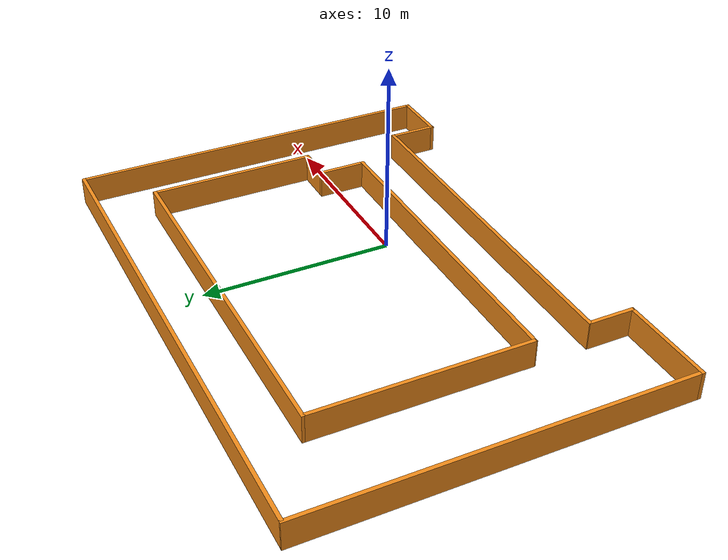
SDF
<?xml version='1.0'?>
<sdf version='1.7'>
  <model name='simple_kb'>
    <link name='link_0'>
      <inertial>
        <mass>1</mass>
        <inertia>
          <ixx>0.166667</ixx>
          <ixy>0</ixy>
          <ixz>0</ixz>
          <iyy>0.166667</iyy>
          <iyz>0</iyz>
          <izz>0.166667</izz>
        </inertia>
        <pose>0 0 0 0 -0 0</pose>
      </inertial>
      <pose>-0.839286 -5.09643 0 0 -0 0</pose>
      <gravity>1</gravity>
      <self_collide>0</self_collide>
      <kinematic>0</kinematic>
      <enable_wind>0</enable_wind>
      <visual name='visual'>
        <pose>0 0 0 0 -0 0</pose>
        <geometry>
          <box>
            <size>20 0.2 1.5</size>
          </box>
        </geometry>
        <material>
          <lighting>1</lighting>
          <script>
            <uri>file://media/materials/scripts/gazebo.material</uri>
            <name>Gazebo/Orange</name>
          </script>
          <shader type='pixel'>
            <normal_map>__default__</normal_map>
          </shader>
          <ambient>0.3 0.3 0.3 1</ambient>
          <diffuse>0.7 0.7 0.7 1</diffuse>
          <specular>0.01 0.01 0.01 1</specular>
          <emissive>0 0 0 1</emissive>
        </material>
        <transparency>0</transparency>
        <cast_shadows>1</cast_shadows>
      </visual>
      <collision name='collision'>
        <laser_retro>0</laser_retro>
        <max_contacts>10</max_contacts>
        <pose>0 0 0 0 -0 0</pose>
        <geometry>
          <box>
            <size>20 0.2 1.5</size>
          </box>
        </geometry>
        <surface>
          <friction>
            <ode>
              <mu>1</mu>
              <mu2>1</mu2>
              <fdir1>0 0 0</fdir1>
              <slip1>0</slip1>
              <slip2>0</slip2>
            </ode>
            <torsional>
              <coefficient>1</coefficient>
              <patch_radius>0</patch_radius>
              <surface_radius>0</surface_radius>
              <use_patch_radius>1</use_patch_radius>
              <ode>
                <slip>0</slip>
              </ode>
            </torsional>
          </friction>
          <bounce>
            <restitution_coefficient>0</restitution_coefficient>
            <threshold>1e+06</threshold>
          </bounce>
          <contact>
            <collide_without_contact>0</collide_without_contact>
            <collide_without_contact_bitmask>1</collide_without_contact_bitmask>
            <collide_bitmask>1</collide_bitmask>
            <ode>
              <soft_cfm>0</soft_cfm>
              <soft_erp>0.2</soft_erp>
              <kp>1e+13</kp>
              <kd>1</kd>
              <max_vel>0.01</max_vel>
              <min_depth>0</min_depth>
            </ode>
            <bullet>
              <split_impulse>1</split_impulse>
              <split_impulse_penetration_threshold>-0.01</split_impulse_penetration_threshold>
              <soft_cfm>0</soft_cfm>
              <soft_erp>0.2</soft_erp>
              <kp>1e+13</kp>
              <kd>1</kd>
            </bullet>
          </contact>
        </surface>
      </collision>
    </link>
    <link name='link_0_clone'>
      <inertial>
        <mass>1</mass>
        <inertia>
          <ixx>0.166667</ixx>
          <ixy>0</ixy>
          <ixz>0</ixz>
          <iyy>0.166667</iyy>
          <iyz>0</iyz>
          <izz>0.166667</izz>
        </inertia>
        <pose>0 0 0 0 -0 0</pose>
      </inertial>
      <pose>-1.83929 -2.09643 0 0 -0 0</pose>
      <gravity>1</gravity>
      <self_collide>0</self_collide>
      <kinematic>0</kinematic>
      <enable_wind>0</enable_wind>
      <visual name='visual'>
        <pose>0 0 0 0 -0 0</pose>
        <geometry>
          <box>
            <size>18 0.2 1.5</size>
          </box>
        </geometry>
        <material>
          <lighting>1</lighting>
          <script>
            <uri>file://media/materials/scripts/gazebo.material</uri>
            <name>Gazebo/Orange</name>
          </script>
          <shader type='pixel'>
            <normal_map>__default__</normal_map>
          </shader>
          <ambient>0.3 0.3 0.3 1</ambient>
          <diffuse>0.7 0.7 0.7 1</diffuse>
          <specular>0.01 0.01 0.01 1</specular>
          <emissive>0 0 0 1</emissive>
        </material>
        <transparency>0</transparency>
        <cast_shadows>1</cast_shadows>
      </visual>
      <collision name='collision'>
        <laser_retro>0</laser_retro>
        <max_contacts>10</max_contacts>
        <pose>0 0 0 0 -0 0</pose>
        <geometry>
          <box>
            <size>18 0.2 1.5</size>
          </box>
        </geometry>
        <surface>
          <friction>
            <ode>
              <mu>1</mu>
              <mu2>1</mu2>
              <fdir1>0 0 0</fdir1>
              <slip1>0</slip1>
              <slip2>0</slip2>
            </ode>
            <torsional>
              <coefficient>1</coefficient>
              <patch_radius>0</patch_radius>
              <surface_radius>0</surface_radius>
              <use_patch_radius>1</use_patch_radius>
              <ode>
                <slip>0</slip>
              </ode>
            </torsional>
          </friction>
          <bounce>
            <restitution_coefficient>0</restitution_coefficient>
            <threshold>1e+06</threshold>
          </bounce>
          <contact>
            <collide_without_contact>0</collide_without_contact>
            <collide_without_contact_bitmask>1</collide_without_contact_bitmask>
            <collide_bitmask>1</collide_bitmask>
            <ode>
              <soft_cfm>0</soft_cfm>
              <soft_erp>0.2</soft_erp>
              <kp>1e+13</kp>
              <kd>1</kd>
              <max_vel>0.01</max_vel>
              <min_depth>0</min_depth>
            </ode>
            <bullet>
              <split_impulse>1</split_impulse>
              <split_impulse_penetration_threshold>-0.01</split_impulse_penetration_threshold>
              <soft_cfm>0</soft_cfm>
              <soft_erp>0.2</soft_erp>
              <kp>1e+13</kp>
              <kd>1</kd>
            </bullet>
          </contact>
        </surface>
      </collision>
    </link>
    <link name='link_0_clone_0'>
      <inertial>
        <mass>1</mass>
        <inertia>
          <ixx>0.166667</ixx>
          <ixy>0</ixy>
          <ixz>0</ixz>
          <iyy>0.166667</iyy>
          <iyz>0</iyz>
          <izz>0.166667</izz>
        </inertia>
        <pose>0 0 0 0 -0 0</pose>
      </inertial>
      <pose>-1.83929 12.5036 0 0 -0 0</pose>
      <gravity>1</gravity>
      <self_collide>0</self_collide>
      <kinematic>0</kinematic>
      <enable_wind>0</enable_wind>
      <visual name='visual'>
        <pose>0 0 0 0 -0 0</pose>
        <geometry>
          <box>
            <size>28 0.2 1.5</size>
          </box>
        </geometry>
        <material>
          <lighting>1</lighting>
          <script>
            <uri>file://media/materials/scripts/gazebo.material</uri>
            <name>Gazebo/Orange</name>
          </script>
          <shader type='pixel'>
            <normal_map>__default__</normal_map>
          </shader>
          <ambient>0.3 0.3 0.3 1</ambient>
          <diffuse>0.7 0.7 0.7 1</diffuse>
          <specular>0.01 0.01 0.01 1</specular>
          <emissive>0 0 0 1</emissive>
        </material>
        <transparency>0</transparency>
        <cast_shadows>1</cast_shadows>
      </visual>
      <collision name='collision'>
        <laser_retro>0</laser_retro>
        <max_contacts>10</max_contacts>
        <pose>0 0 0 0 -0 0</pose>
        <geometry>
          <box>
            <size>28 0.2 1.5</size>
          </box>
        </geometry>
        <surface>
          <friction>
            <ode>
              <mu>1</mu>
              <mu2>1</mu2>
              <fdir1>0 0 0</fdir1>
              <slip1>0</slip1>
              <slip2>0</slip2>
            </ode>
            <torsional>
              <coefficient>1</coefficient>
              <patch_radius>0</patch_radius>
              <surface_radius>0</surface_radius>
              <use_patch_radius>1</use_patch_radius>
              <ode>
                <slip>0</slip>
              </ode>
            </torsional>
          </friction>
          <bounce>
            <restitution_coefficient>0</restitution_coefficient>
            <threshold>1e+06</threshold>
          </bounce>
          <contact>
            <collide_without_contact>0</collide_without_contact>
            <collide_without_contact_bitmask>1</collide_without_contact_bitmask>
            <collide_bitmask>1</collide_bitmask>
            <ode>
              <soft_cfm>0</soft_cfm>
              <soft_erp>0.2</soft_erp>
              <kp>1e+13</kp>
              <kd>1</kd>
              <max_vel>0.01</max_vel>
              <min_depth>0</min_depth>
            </ode>
            <bullet>
              <split_impulse>1</split_impulse>
              <split_impulse_penetration_threshold>-0.01</split_impulse_penetration_threshold>
              <soft_cfm>0</soft_cfm>
              <soft_erp>0.2</soft_erp>
              <kp>1e+13</kp>
              <kd>1</kd>
            </bullet>
          </contact>
        </surface>
      </collision>
    </link>
    <link name='link_0_clone_1'>
      <inertial>
        <mass>1</mass>
        <inertia>
          <ixx>0.166667</ixx>
          <ixy>0</ixy>
          <ixz>0</ixz>
          <iyy>0.166667</iyy>
          <iyz>0</iyz>
          <izz>0.166667</izz>
        </inertia>
        <pose>0 0 0 0 -0 0</pose>
      </inertial>
      <pose>-0.839286 9.40357 0 0 -0 0</pose>
      <gravity>1</gravity>
      <self_collide>0</self_collide>
      <kinematic>0</kinematic>
      <enable_wind>0</enable_wind>
      <visual name='visual'>
        <pose>0 0 0 0 -0 0</pose>
        <geometry>
          <box>
            <size>20 0.2 1.5</size>
          </box>
        </geometry>
        <material>
          <lighting>1</lighting>
          <script>
            <uri>file://media/materials/scripts/gazebo.material</uri>
            <name>Gazebo/Orange</name>
          </script>
          <shader type='pixel'>
            <normal_map>__default__</normal_map>
          </shader>
          <ambient>0.3 0.3 0.3 1</ambient>
          <diffuse>0.7 0.7 0.7 1</diffuse>
          <specular>0.01 0.01 0.01 1</specular>
          <emissive>0 0 0 1</emissive>
        </material>
        <transparency>0</transparency>
        <cast_shadows>1</cast_shadows>
      </visual>
      <collision name='collision'>
        <laser_retro>0</laser_retro>
        <max_contacts>10</max_contacts>
        <pose>0 0 0 0 -0 0</pose>
        <geometry>
          <box>
            <size>20 0.2 1.5</size>
          </box>
        </geometry>
        <surface>
          <friction>
            <ode>
              <mu>1</mu>
              <mu2>1</mu2>
              <fdir1>0 0 0</fdir1>
              <slip1>0</slip1>
              <slip2>0</slip2>
            </ode>
            <torsional>
              <coefficient>1</coefficient>
              <patch_radius>0</patch_radius>
              <surface_radius>0</surface_radius>
              <use_patch_radius>1</use_patch_radius>
              <ode>
                <slip>0</slip>
              </ode>
            </torsional>
          </friction>
          <bounce>
            <restitution_coefficient>0</restitution_coefficient>
            <threshold>1e+06</threshold>
          </bounce>
          <contact>
            <collide_without_contact>0</collide_without_contact>
            <collide_without_contact_bitmask>1</collide_without_contact_bitmask>
            <collide_bitmask>1</collide_bitmask>
            <ode>
              <soft_cfm>0</soft_cfm>
              <soft_erp>0.2</soft_erp>
              <kp>1e+13</kp>
              <kd>1</kd>
              <max_vel>0.01</max_vel>
              <min_depth>0</min_depth>
            </ode>
            <bullet>
              <split_impulse>1</split_impulse>
              <split_impulse_penetration_threshold>-0.01</split_impulse_penetration_threshold>
              <soft_cfm>0</soft_cfm>
              <soft_erp>0.2</soft_erp>
              <kp>1e+13</kp>
              <kd>1</kd>
            </bullet>
          </contact>
        </surface>
      </collision>
    </link>
    <link name='link_1'>
      <inertial>
        <mass>1</mass>
        <inertia>
          <ixx>0.166667</ixx>
          <ixy>0</ixy>
          <ixz>0</ixz>
          <iyy>0.166667</iyy>
          <iyz>0</iyz>
          <izz>0.166667</izz>
        </inertia>
        <pose>0 0 0 0 -0 0</pose>
      </inertial>
      <pose>12.0607 2.40357 0 0 -0 0</pose>
      <gravity>1</gravity>
      <self_collide>0</self_collide>
      <kinematic>0</kinematic>
      <enable_wind>0</enable_wind>
      <visual name='visual'>
        <pose>0 0 0 0 -0 0</pose>
        <geometry>
          <box>
            <size>0.2 20 1.5</size>
          </box>
        </geometry>
        <material>
          <lighting>1</lighting>
          <script>
            <uri>file://media/materials/scripts/gazebo.material</uri>
            <name>Gazebo/Orange</name>
          </script>
          <shader type='pixel'>
            <normal_map>__default__</normal_map>
          </shader>
          <ambient>0.3 0.3 0.3 1</ambient>
          <diffuse>0.7 0.7 0.7 1</diffuse>
          <specular>0.01 0.01 0.01 1</specular>
          <emissive>0 0 0 1</emissive>
        </material>
        <transparency>0</transparency>
        <cast_shadows>1</cast_shadows>
      </visual>
      <collision name='collision'>
        <laser_retro>0</laser_retro>
        <max_contacts>10</max_contacts>
        <pose>0 0 0 0 -0 0</pose>
        <geometry>
          <box>
            <size>0.2 20 1.5</size>
          </box>
        </geometry>
        <surface>
          <friction>
            <ode>
              <mu>1</mu>
              <mu2>1</mu2>
              <fdir1>0 0 0</fdir1>
              <slip1>0</slip1>
              <slip2>0</slip2>
            </ode>
            <torsional>
              <coefficient>1</coefficient>
              <patch_radius>0</patch_radius>
              <surface_radius>0</surface_radius>
              <use_patch_radius>1</use_patch_radius>
              <ode>
                <slip>0</slip>
              </ode>
            </torsional>
          </friction>
          <bounce>
            <restitution_coefficient>0</restitution_coefficient>
            <threshold>1e+06</threshold>
          </bounce>
          <contact>
            <collide_without_contact>0</collide_without_contact>
            <collide_without_contact_bitmask>1</collide_without_contact_bitmask>
            <collide_bitmask>1</collide_bitmask>
            <ode>
              <soft_cfm>0</soft_cfm>
              <soft_erp>0.2</soft_erp>
              <kp>1e+13</kp>
              <kd>1</kd>
              <max_vel>0.01</max_vel>
              <min_depth>0</min_depth>
            </ode>
            <bullet>
              <split_impulse>1</split_impulse>
              <split_impulse_penetration_threshold>-0.01</split_impulse_penetration_threshold>
              <soft_cfm>0</soft_cfm>
              <soft_erp>0.2</soft_erp>
              <kp>1e+13</kp>
              <kd>1</kd>
            </bullet>
          </contact>
        </surface>
      </collision>
    </link>
    <link name='link_1_clone'>
      <inertial>
        <mass>1</mass>
        <inertia>
          <ixx>0.166667</ixx>
          <ixy>0</ixy>
          <ixz>0</ixz>
          <iyy>0.166667</iyy>
          <iyz>0</iyz>
          <izz>0.166667</izz>
        </inertia>
        <pose>0 0 0 0 -0 0</pose>
      </inertial>
      <pose>9.06071 4.80357 0 0 -0 0</pose>
      <gravity>1</gravity>
      <self_collide>0</self_collide>
      <kinematic>0</kinematic>
      <enable_wind>0</enable_wind>
      <visual name='visual'>
        <pose>0 0 0 0 -0 0</pose>
        <geometry>
          <box>
            <size>0.2 9 1.5</size>
          </box>
        </geometry>
        <material>
          <lighting>1</lighting>
          <script>
            <uri>file://media/materials/scripts/gazebo.material</uri>
            <name>Gazebo/Orange</name>
          </script>
          <shader type='pixel'>
            <normal_map>__default__</normal_map>
          </shader>
          <ambient>0.3 0.3 0.3 1</ambient>
          <diffuse>0.7 0.7 0.7 1</diffuse>
          <specular>0.01 0.01 0.01 1</specular>
          <emissive>0 0 0 1</emissive>
        </material>
        <transparency>0</transparency>
        <cast_shadows>1</cast_shadows>
      </visual>
      <collision name='collision'>
        <laser_retro>0</laser_retro>
        <max_contacts>10</max_contacts>
        <pose>0 0 0 0 -0 0</pose>
        <geometry>
          <box>
            <size>0.2 9 1.5</size>
          </box>
        </geometry>
        <surface>
          <friction>
            <ode>
              <mu>1</mu>
              <mu2>1</mu2>
              <fdir1>0 0 0</fdir1>
              <slip1>0</slip1>
              <slip2>0</slip2>
            </ode>
            <torsional>
              <coefficient>1</coefficient>
              <patch_radius>0</patch_radius>
              <surface_radius>0</surface_radius>
              <use_patch_radius>1</use_patch_radius>
              <ode>
                <slip>0</slip>
              </ode>
            </torsional>
          </friction>
          <bounce>
            <restitution_coefficient>0</restitution_coefficient>
            <threshold>1e+06</threshold>
          </bounce>
          <contact>
            <collide_without_contact>0</collide_without_contact>
            <collide_without_contact_bitmask>1</collide_without_contact_bitmask>
            <collide_bitmask>1</collide_bitmask>
            <ode>
              <soft_cfm>0</soft_cfm>
              <soft_erp>0.2</soft_erp>
              <kp>1e+13</kp>
              <kd>1</kd>
              <max_vel>0.01</max_vel>
              <min_depth>0</min_depth>
            </ode>
            <bullet>
              <split_impulse>1</split_impulse>
              <split_impulse_penetration_threshold>-0.01</split_impulse_penetration_threshold>
              <soft_cfm>0</soft_cfm>
              <soft_erp>0.2</soft_erp>
              <kp>1e+13</kp>
              <kd>1</kd>
            </bullet>
          </contact>
        </surface>
      </collision>
    </link>
    <link name='link_1_clone_0'>
      <inertial>
        <mass>1</mass>
        <inertia>
          <ixx>0.166667</ixx>
          <ixy>0</ixy>
          <ixz>0</ixz>
          <iyy>0.166667</iyy>
          <iyz>0</iyz>
          <izz>0.166667</izz>
        </inertia>
        <pose>0 0 0 0 -0 0</pose>
      </inertial>
      <pose>-15.8393 2.60357 0 0 -0 0</pose>
      <gravity>1</gravity>
      <self_collide>0</self_collide>
      <kinematic>0</kinematic>
      <enable_wind>0</enable_wind>
      <visual name='visual'>
        <pose>0 0 0 0 -0 0</pose>
        <geometry>
          <box>
            <size>0.2 20 1.5</size>
          </box>
        </geometry>
        <material>
          <lighting>1</lighting>
          <script>
            <uri>file://media/materials/scripts/gazebo.material</uri>
            <name>Gazebo/Orange</name>
          </script>
          <shader type='pixel'>
            <normal_map>__default__</normal_map>
          </shader>
          <ambient>0.3 0.3 0.3 1</ambient>
          <diffuse>0.7 0.7 0.7 1</diffuse>
          <specular>0.01 0.01 0.01 1</specular>
          <emissive>0 0 0 1</emissive>
        </material>
        <transparency>0</transparency>
        <cast_shadows>1</cast_shadows>
      </visual>
      <collision name='collision'>
        <laser_retro>0</laser_retro>
        <max_contacts>10</max_contacts>
        <pose>0 0 0 0 -0 0</pose>
        <geometry>
          <box>
            <size>0.2 20 1.5</size>
          </box>
        </geometry>
        <surface>
          <friction>
            <ode>
              <mu>1</mu>
              <mu2>1</mu2>
              <fdir1>0 0 0</fdir1>
              <slip1>0</slip1>
              <slip2>0</slip2>
            </ode>
            <torsional>
              <coefficient>1</coefficient>
              <patch_radius>0</patch_radius>
              <surface_radius>0</surface_radius>
              <use_patch_radius>1</use_patch_radius>
              <ode>
                <slip>0</slip>
              </ode>
            </torsional>
          </friction>
          <bounce>
            <restitution_coefficient>0</restitution_coefficient>
            <threshold>1e+06</threshold>
          </bounce>
          <contact>
            <collide_without_contact>0</collide_without_contact>
            <collide_without_contact_bitmask>1</collide_without_contact_bitmask>
            <collide_bitmask>1</collide_bitmask>
            <ode>
              <soft_cfm>0</soft_cfm>
              <soft_erp>0.2</soft_erp>
              <kp>1e+13</kp>
              <kd>1</kd>
              <max_vel>0.01</max_vel>
              <min_depth>0</min_depth>
            </ode>
            <bullet>
              <split_impulse>1</split_impulse>
              <split_impulse_penetration_threshold>-0.01</split_impulse_penetration_threshold>
              <soft_cfm>0</soft_cfm>
              <soft_erp>0.2</soft_erp>
              <kp>1e+13</kp>
              <kd>1</kd>
            </bullet>
          </contact>
        </surface>
      </collision>
    </link>
    <link name='link_1_clone_clone'>
      <inertial>
        <mass>1</mass>
        <inertia>
          <ixx>0.166667</ixx>
          <ixy>0</ixy>
          <ixz>0</ixz>
          <iyy>0.166667</iyy>
          <iyz>0</iyz>
          <izz>0.166667</izz>
        </inertia>
        <pose>0 0 0 0 -0 0</pose>
      </inertial>
      <pose>-10.7393 3.60357 0 0 -0 0</pose>
      <gravity>1</gravity>
      <self_collide>0</self_collide>
      <kinematic>0</kinematic>
      <enable_wind>0</enable_wind>
      <visual name='visual'>
        <pose>0 0 0 0 -0 0</pose>
        <geometry>
          <box>
            <size>0.2 11.5 1.5</size>
          </box>
        </geometry>
        <material>
          <lighting>1</lighting>
          <script>
            <uri>file://media/materials/scripts/gazebo.material</uri>
            <name>Gazebo/Orange</name>
          </script>
          <shader type='pixel'>
            <normal_map>__default__</normal_map>
          </shader>
          <ambient>0.3 0.3 0.3 1</ambient>
          <diffuse>0.7 0.7 0.7 1</diffuse>
          <specular>0.01 0.01 0.01 1</specular>
          <emissive>0 0 0 1</emissive>
        </material>
        <transparency>0</transparency>
        <cast_shadows>1</cast_shadows>
      </visual>
      <collision name='collision'>
        <laser_retro>0</laser_retro>
        <max_contacts>10</max_contacts>
        <pose>0 0 0 0 -0 0</pose>
        <geometry>
          <box>
            <size>0.2 11.5 1.5</size>
          </box>
        </geometry>
        <surface>
          <friction>
            <ode>
              <mu>1</mu>
              <mu2>1</mu2>
              <fdir1>0 0 0</fdir1>
              <slip1>0</slip1>
              <slip2>0</slip2>
            </ode>
            <torsional>
              <coefficient>1</coefficient>
              <patch_radius>0</patch_radius>
              <surface_radius>0</surface_radius>
              <use_patch_radius>1</use_patch_radius>
              <ode>
                <slip>0</slip>
              </ode>
            </torsional>
          </friction>
          <bounce>
            <restitution_coefficient>0</restitution_coefficient>
            <threshold>1e+06</threshold>
          </bounce>
          <contact>
            <collide_without_contact>0</collide_without_contact>
            <collide_without_contact_bitmask>1</collide_without_contact_bitmask>
            <collide_bitmask>1</collide_bitmask>
            <ode>
              <soft_cfm>0</soft_cfm>
              <soft_erp>0.2</soft_erp>
              <kp>1e+13</kp>
              <kd>1</kd>
              <max_vel>0.01</max_vel>
              <min_depth>0</min_depth>
            </ode>
            <bullet>
              <split_impulse>1</split_impulse>
              <split_impulse_penetration_threshold>-0.01</split_impulse_penetration_threshold>
              <soft_cfm>0</soft_cfm>
              <soft_erp>0.2</soft_erp>
              <kp>1e+13</kp>
              <kd>1</kd>
            </bullet>
          </contact>
        </surface>
      </collision>
    </link>
    <link name='link_2'>
      <inertial>
        <mass>1</mass>
        <inertia>
          <ixx>0.166667</ixx>
          <ixy>0</ixy>
          <ixz>0</ixz>
          <iyy>0.166667</iyy>
          <iyz>0</iyz>
          <izz>0.166667</izz>
        </inertia>
        <pose>0 0 0 0 -0 0</pose>
      </inertial>
      <pose>9.06071 -6.39643 0 0 -0 0</pose>
      <gravity>1</gravity>
      <self_collide>0</self_collide>
      <kinematic>0</kinematic>
      <enable_wind>0</enable_wind>
      <visual name='visual'>
        <pose>0 0 0 0 -0 0</pose>
        <geometry>
          <box>
            <size>0.2 2.5 1.5</size>
          </box>
        </geometry>
        <material>
          <lighting>1</lighting>
          <script>
            <uri>file://media/materials/scripts/gazebo.material</uri>
            <name>Gazebo/Orange</name>
          </script>
          <shader type='pixel'>
            <normal_map>__default__</normal_map>
          </shader>
          <ambient>0.3 0.3 0.3 1</ambient>
          <diffuse>0.7 0.7 0.7 1</diffuse>
          <specular>0.01 0.01 0.01 1</specular>
          <emissive>0 0 0 1</emissive>
        </material>
        <transparency>0</transparency>
        <cast_shadows>1</cast_shadows>
      </visual>
      <collision name='collision'>
        <laser_retro>0</laser_retro>
        <max_contacts>10</max_contacts>
        <pose>0 0 0 0 -0 0</pose>
        <geometry>
          <box>
            <size>0.2 2.5 1.5</size>
          </box>
        </geometry>
        <surface>
          <friction>
            <ode>
              <mu>1</mu>
              <mu2>1</mu2>
              <fdir1>0 0 0</fdir1>
              <slip1>0</slip1>
              <slip2>0</slip2>
            </ode>
            <torsional>
              <coefficient>1</coefficient>
              <patch_radius>0</patch_radius>
              <surface_radius>0</surface_radius>
              <use_patch_radius>1</use_patch_radius>
              <ode>
                <slip>0</slip>
              </ode>
            </torsional>
          </friction>
          <bounce>
            <restitution_coefficient>0</restitution_coefficient>
            <threshold>1e+06</threshold>
          </bounce>
          <contact>
            <collide_without_contact>0</collide_without_contact>
            <collide_without_contact_bitmask>1</collide_without_contact_bitmask>
            <collide_bitmask>1</collide_bitmask>
            <ode>
              <soft_cfm>0</soft_cfm>
              <soft_erp>0.2</soft_erp>
              <kp>1e+13</kp>
              <kd>1</kd>
              <max_vel>0.01</max_vel>
              <min_depth>0</min_depth>
            </ode>
            <bullet>
              <split_impulse>1</split_impulse>
              <split_impulse_penetration_threshold>-0.01</split_impulse_penetration_threshold>
              <soft_cfm>0</soft_cfm>
              <soft_erp>0.2</soft_erp>
              <kp>1e+13</kp>
              <kd>1</kd>
            </bullet>
          </contact>
        </surface>
      </collision>
    </link>
    <link name='link_2_clone'>
      <inertial>
        <mass>1</mass>
        <inertia>
          <ixx>0.166667</ixx>
          <ixy>0</ixy>
          <ixz>0</ixz>
          <iyy>0.166667</iyy>
          <iyz>0</iyz>
          <izz>0.166667</izz>
        </inertia>
        <pose>0 0 0 0 -0 0</pose>
      </inertial>
      <pose>-10.7393 -6.29643 0 0 -0 0</pose>
      <gravity>1</gravity>
      <self_collide>0</self_collide>
      <kinematic>0</kinematic>
      <enable_wind>0</enable_wind>
      <visual name='visual'>
        <pose>0 0 0 0 -0 0</pose>
        <geometry>
          <box>
            <size>0.2 2.5 1.5</size>
          </box>
        </geometry>
        <material>
          <lighting>1</lighting>
          <script>
            <uri>file://media/materials/scripts/gazebo.material</uri>
            <name>Gazebo/Orange</name>
          </script>
          <shader type='pixel'>
            <normal_map>__default__</normal_map>
          </shader>
          <ambient>0.3 0.3 0.3 1</ambient>
          <diffuse>0.7 0.7 0.7 1</diffuse>
          <specular>0.01 0.01 0.01 1</specular>
          <emissive>0 0 0 1</emissive>
        </material>
        <transparency>0</transparency>
        <cast_shadows>1</cast_shadows>
      </visual>
      <collision name='collision'>
        <laser_retro>0</laser_retro>
        <max_contacts>10</max_contacts>
        <pose>0 0 0 0 -0 0</pose>
        <geometry>
          <box>
            <size>0.2 2.5 1.5</size>
          </box>
        </geometry>
        <surface>
          <friction>
            <ode>
              <mu>1</mu>
              <mu2>1</mu2>
              <fdir1>0 0 0</fdir1>
              <slip1>0</slip1>
              <slip2>0</slip2>
            </ode>
            <torsional>
              <coefficient>1</coefficient>
              <patch_radius>0</patch_radius>
              <surface_radius>0</surface_radius>
              <use_patch_radius>1</use_patch_radius>
              <ode>
                <slip>0</slip>
              </ode>
            </torsional>
          </friction>
          <bounce>
            <restitution_coefficient>0</restitution_coefficient>
            <threshold>1e+06</threshold>
          </bounce>
          <contact>
            <collide_without_contact>0</collide_without_contact>
            <collide_without_contact_bitmask>1</collide_without_contact_bitmask>
            <collide_bitmask>1</collide_bitmask>
            <ode>
              <soft_cfm>0</soft_cfm>
              <soft_erp>0.2</soft_erp>
              <kp>1e+13</kp>
              <kd>1</kd>
              <max_vel>0.01</max_vel>
              <min_depth>0</min_depth>
            </ode>
            <bullet>
              <split_impulse>1</split_impulse>
              <split_impulse_penetration_threshold>-0.01</split_impulse_penetration_threshold>
              <soft_cfm>0</soft_cfm>
              <soft_erp>0.2</soft_erp>
              <kp>1e+13</kp>
              <kd>1</kd>
            </bullet>
          </contact>
        </surface>
      </collision>
    </link>
    <link name='link_2_clone_0'>
      <inertial>
        <mass>1</mass>
        <inertia>
          <ixx>0.166667</ixx>
          <ixy>0</ixy>
          <ixz>0</ixz>
          <iyy>0.166667</iyy>
          <iyz>0</iyz>
          <izz>0.166667</izz>
        </inertia>
        <pose>0 0 0 0 -0 0</pose>
      </inertial>
      <pose>7.06071 -0.746429 0 0 -0 0</pose>
      <gravity>1</gravity>
      <self_collide>0</self_collide>
      <kinematic>0</kinematic>
      <enable_wind>0</enable_wind>
      <visual name='visual'>
        <pose>0 0 0 0 -0 0</pose>
        <geometry>
          <box>
            <size>0.2 2.5 1.5</size>
          </box>
        </geometry>
        <material>
          <lighting>1</lighting>
          <script>
            <uri>file://media/materials/scripts/gazebo.material</uri>
            <name>Gazebo/Orange</name>
          </script>
          <shader type='pixel'>
            <normal_map>__default__</normal_map>
          </shader>
          <ambient>0.3 0.3 0.3 1</ambient>
          <diffuse>0.7 0.7 0.7 1</diffuse>
          <specular>0.01 0.01 0.01 1</specular>
          <emissive>0 0 0 1</emissive>
        </material>
        <transparency>0</transparency>
        <cast_shadows>1</cast_shadows>
      </visual>
      <collision name='collision'>
        <laser_retro>0</laser_retro>
        <max_contacts>10</max_contacts>
        <pose>0 0 0 0 -0 0</pose>
        <geometry>
          <box>
            <size>0.2 2.5 1.5</size>
          </box>
        </geometry>
        <surface>
          <friction>
            <ode>
              <mu>1</mu>
              <mu2>1</mu2>
              <fdir1>0 0 0</fdir1>
              <slip1>0</slip1>
              <slip2>0</slip2>
            </ode>
            <torsional>
              <coefficient>1</coefficient>
              <patch_radius>0</patch_radius>
              <surface_radius>0</surface_radius>
              <use_patch_radius>1</use_patch_radius>
              <ode>
                <slip>0</slip>
              </ode>
            </torsional>
          </friction>
          <bounce>
            <restitution_coefficient>0</restitution_coefficient>
            <threshold>1e+06</threshold>
          </bounce>
          <contact>
            <collide_without_contact>0</collide_without_contact>
            <collide_without_contact_bitmask>1</collide_without_contact_bitmask>
            <collide_bitmask>1</collide_bitmask>
            <ode>
              <soft_cfm>0</soft_cfm>
              <soft_erp>0.2</soft_erp>
              <kp>1e+13</kp>
              <kd>1</kd>
              <max_vel>0.01</max_vel>
              <min_depth>0</min_depth>
            </ode>
            <bullet>
              <split_impulse>1</split_impulse>
              <split_impulse_penetration_threshold>-0.01</split_impulse_penetration_threshold>
              <soft_cfm>0</soft_cfm>
              <soft_erp>0.2</soft_erp>
              <kp>1e+13</kp>
              <kd>1</kd>
            </bullet>
          </contact>
        </surface>
      </collision>
    </link>
    <link name='link_3'>
      <inertial>
        <mass>1</mass>
        <inertia>
          <ixx>0.166667</ixx>
          <ixy>0</ixy>
          <ixz>0</ixz>
          <iyy>0.166667</iyy>
          <iyz>0</iyz>
          <izz>0.166667</izz>
        </inertia>
        <pose>0 0 0 0 -0 0</pose>
      </inertial>
      <pose>8.16071 0.403571 0 0 -0 0</pose>
      <gravity>1</gravity>
      <self_collide>0</self_collide>
      <kinematic>0</kinematic>
      <enable_wind>0</enable_wind>
      <visual name='visual'>
        <pose>0 0 0 0 -0 0</pose>
        <geometry>
          <box>
            <size>2 0.2 1.5</size>
          </box>
        </geometry>
        <material>
          <lighting>1</lighting>
          <script>
            <uri>file://media/materials/scripts/gazebo.material</uri>
            <name>Gazebo/Orange</name>
          </script>
          <shader type='pixel'>
            <normal_map>__default__</normal_map>
          </shader>
          <ambient>0.3 0.3 0.3 1</ambient>
          <diffuse>0.7 0.7 0.7 1</diffuse>
          <specular>0.01 0.01 0.01 1</specular>
          <emissive>0 0 0 1</emissive>
        </material>
        <transparency>0</transparency>
        <cast_shadows>1</cast_shadows>
      </visual>
      <collision name='collision'>
        <laser_retro>0</laser_retro>
        <max_contacts>10</max_contacts>
        <pose>0 0 0 0 -0 0</pose>
        <geometry>
          <box>
            <size>2 0.2 1.5</size>
          </box>
        </geometry>
        <surface>
          <friction>
            <ode>
              <mu>1</mu>
              <mu2>1</mu2>
              <fdir1>0 0 0</fdir1>
              <slip1>0</slip1>
              <slip2>0</slip2>
            </ode>
            <torsional>
              <coefficient>1</coefficient>
              <patch_radius>0</patch_radius>
              <surface_radius>0</surface_radius>
              <use_patch_radius>1</use_patch_radius>
              <ode>
                <slip>0</slip>
              </ode>
            </torsional>
          </friction>
          <bounce>
            <restitution_coefficient>0</restitution_coefficient>
            <threshold>1e+06</threshold>
          </bounce>
          <contact>
            <collide_without_contact>0</collide_without_contact>
            <collide_without_contact_bitmask>1</collide_without_contact_bitmask>
            <collide_bitmask>1</collide_bitmask>
            <ode>
              <soft_cfm>0</soft_cfm>
              <soft_erp>0.2</soft_erp>
              <kp>1e+13</kp>
              <kd>1</kd>
              <max_vel>0.01</max_vel>
              <min_depth>0</min_depth>
            </ode>
            <bullet>
              <split_impulse>1</split_impulse>
              <split_impulse_penetration_threshold>-0.01</split_impulse_penetration_threshold>
              <soft_cfm>0</soft_cfm>
              <soft_erp>0.2</soft_erp>
              <kp>1e+13</kp>
              <kd>1</kd>
            </bullet>
          </contact>
        </surface>
      </collision>
    </link>
    <link name='link_3_clone'>
      <inertial>
        <mass>1</mass>
        <inertia>
          <ixx>0.166667</ixx>
          <ixy>0</ixy>
          <ixz>0</ixz>
          <iyy>0.166667</iyy>
          <iyz>0</iyz>
          <izz>0.166667</izz>
        </inertia>
        <pose>0 0 0 0 -0 0</pose>
      </inertial>
      <pose>10.5607 -7.59643 0 0 -0 0</pose>
      <gravity>1</gravity>
      <self_collide>0</self_collide>
      <kinematic>0</kinematic>
      <enable_wind>0</enable_wind>
      <visual name='visual'>
        <pose>0 0 0 0 -0 0</pose>
        <geometry>
          <box>
            <size>3.2 0.2 1.5</size>
          </box>
        </geometry>
        <material>
          <lighting>1</lighting>
          <script>
            <uri>file://media/materials/scripts/gazebo.material</uri>
            <name>Gazebo/Orange</name>
          </script>
          <shader type='pixel'>
            <normal_map>__default__</normal_map>
          </shader>
          <ambient>0.3 0.3 0.3 1</ambient>
          <diffuse>0.7 0.7 0.7 1</diffuse>
          <specular>0.01 0.01 0.01 1</specular>
          <emissive>0 0 0 1</emissive>
        </material>
        <transparency>0</transparency>
        <cast_shadows>1</cast_shadows>
      </visual>
      <collision name='collision'>
        <laser_retro>0</laser_retro>
        <max_contacts>10</max_contacts>
        <pose>0 0 0 0 -0 0</pose>
        <geometry>
          <box>
            <size>3.2 0.2 1.5</size>
          </box>
        </geometry>
        <surface>
          <friction>
            <ode>
              <mu>1</mu>
              <mu2>1</mu2>
              <fdir1>0 0 0</fdir1>
              <slip1>0</slip1>
              <slip2>0</slip2>
            </ode>
            <torsional>
              <coefficient>1</coefficient>
              <patch_radius>0</patch_radius>
              <surface_radius>0</surface_radius>
              <use_patch_radius>1</use_patch_radius>
              <ode>
                <slip>0</slip>
              </ode>
            </torsional>
          </friction>
          <bounce>
            <restitution_coefficient>0</restitution_coefficient>
            <threshold>1e+06</threshold>
          </bounce>
          <contact>
            <collide_without_contact>0</collide_without_contact>
            <collide_without_contact_bitmask>1</collide_without_contact_bitmask>
            <collide_bitmask>1</collide_bitmask>
            <ode>
              <soft_cfm>0</soft_cfm>
              <soft_erp>0.2</soft_erp>
              <kp>1e+13</kp>
              <kd>1</kd>
              <max_vel>0.01</max_vel>
              <min_depth>0</min_depth>
            </ode>
            <bullet>
              <split_impulse>1</split_impulse>
              <split_impulse_penetration_threshold>-0.01</split_impulse_penetration_threshold>
              <soft_cfm>0</soft_cfm>
              <soft_erp>0.2</soft_erp>
              <kp>1e+13</kp>
              <kd>1</kd>
            </bullet>
          </contact>
        </surface>
      </collision>
    </link>
    <link name='link_3_clone_clone'>
      <inertial>
        <mass>1</mass>
        <inertia>
          <ixx>0.166667</ixx>
          <ixy>0</ixy>
          <ixz>0</ixz>
          <iyy>0.166667</iyy>
          <iyz>0</iyz>
          <izz>0.166667</izz>
        </inertia>
        <pose>0 0 0 0 -0 0</pose>
      </inertial>
      <pose>-13.2893 -7.49643 0 0 -0 0</pose>
      <gravity>1</gravity>
      <self_collide>0</self_collide>
      <kinematic>0</kinematic>
      <enable_wind>0</enable_wind>
      <visual name='visual'>
        <pose>0 0 0 0 -0 0</pose>
        <geometry>
          <box>
            <size>5.3 0.2 1.5</size>
          </box>
        </geometry>
        <material>
          <lighting>1</lighting>
          <script>
            <uri>file://media/materials/scripts/gazebo.material</uri>
            <name>Gazebo/Orange</name>
          </script>
          <shader type='pixel'>
            <normal_map>__default__</normal_map>
          </shader>
          <ambient>0.3 0.3 0.3 1</ambient>
          <diffuse>0.7 0.7 0.7 1</diffuse>
          <specular>0.01 0.01 0.01 1</specular>
          <emissive>0 0 0 1</emissive>
        </material>
        <transparency>0</transparency>
        <cast_shadows>1</cast_shadows>
      </visual>
      <collision name='collision'>
        <laser_retro>0</laser_retro>
        <max_contacts>10</max_contacts>
        <pose>0 0 0 0 -0 0</pose>
        <geometry>
          <box>
            <size>5.3 0.2 1.5</size>
          </box>
        </geometry>
        <surface>
          <friction>
            <ode>
              <mu>1</mu>
              <mu2>1</mu2>
              <fdir1>0 0 0</fdir1>
              <slip1>0</slip1>
              <slip2>0</slip2>
            </ode>
            <torsional>
              <coefficient>1</coefficient>
              <patch_radius>0</patch_radius>
              <surface_radius>0</surface_radius>
              <use_patch_radius>1</use_patch_radius>
              <ode>
                <slip>0</slip>
              </ode>
            </torsional>
          </friction>
          <bounce>
            <restitution_coefficient>0</restitution_coefficient>
            <threshold>1e+06</threshold>
          </bounce>
          <contact>
            <collide_without_contact>0</collide_without_contact>
            <collide_without_contact_bitmask>1</collide_without_contact_bitmask>
            <collide_bitmask>1</collide_bitmask>
            <ode>
              <soft_cfm>0</soft_cfm>
              <soft_erp>0.2</soft_erp>
              <kp>1e+13</kp>
              <kd>1</kd>
              <max_vel>0.01</max_vel>
              <min_depth>0</min_depth>
            </ode>
            <bullet>
              <split_impulse>1</split_impulse>
              <split_impulse_penetration_threshold>-0.01</split_impulse_penetration_threshold>
              <soft_cfm>0</soft_cfm>
              <soft_erp>0.2</soft_erp>
              <kp>1e+13</kp>
              <kd>1</kd>
            </bullet>
          </contact>
        </surface>
      </collision>
    </link>
    <static>1</static>
    <allow_auto_disable>1</allow_auto_disable>
  </model>
</sdf>
